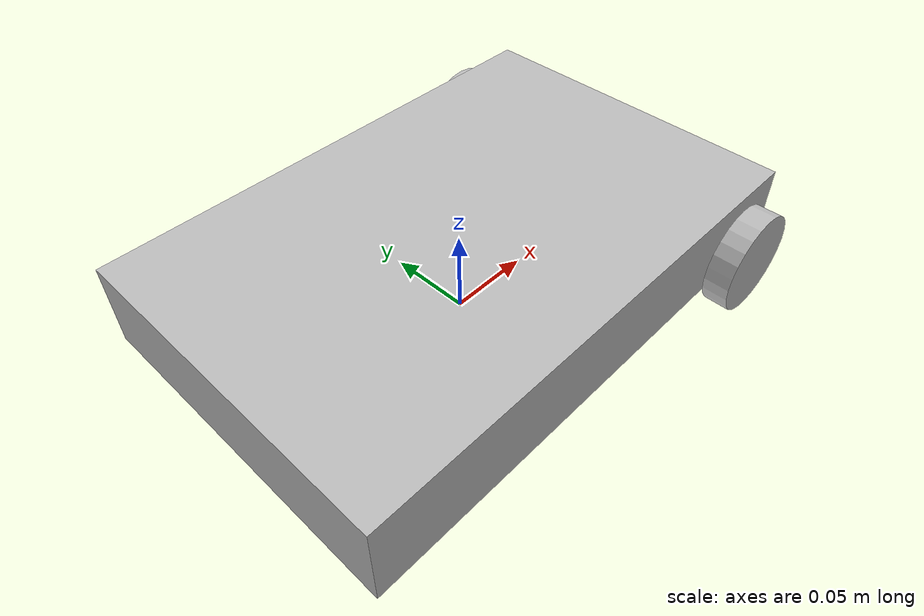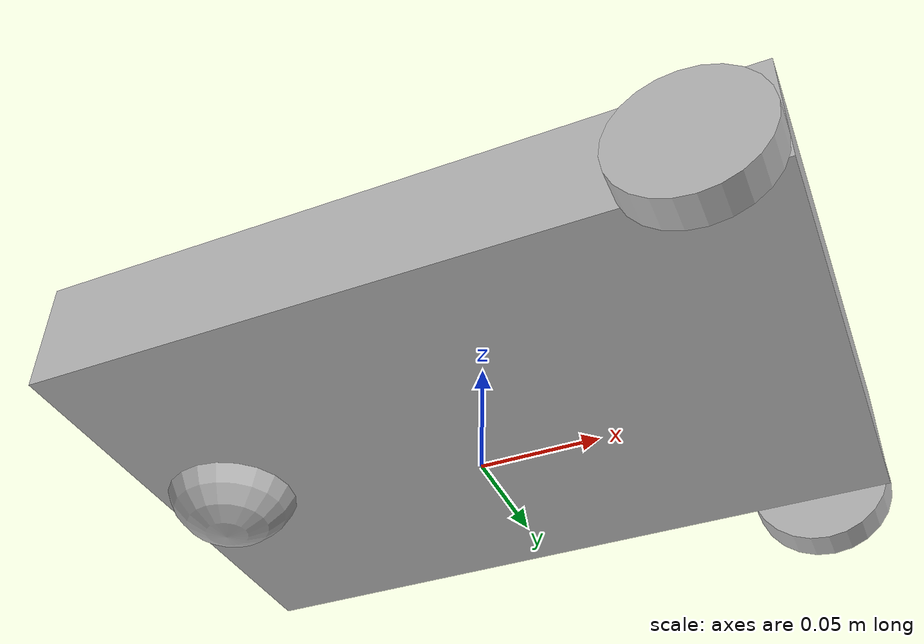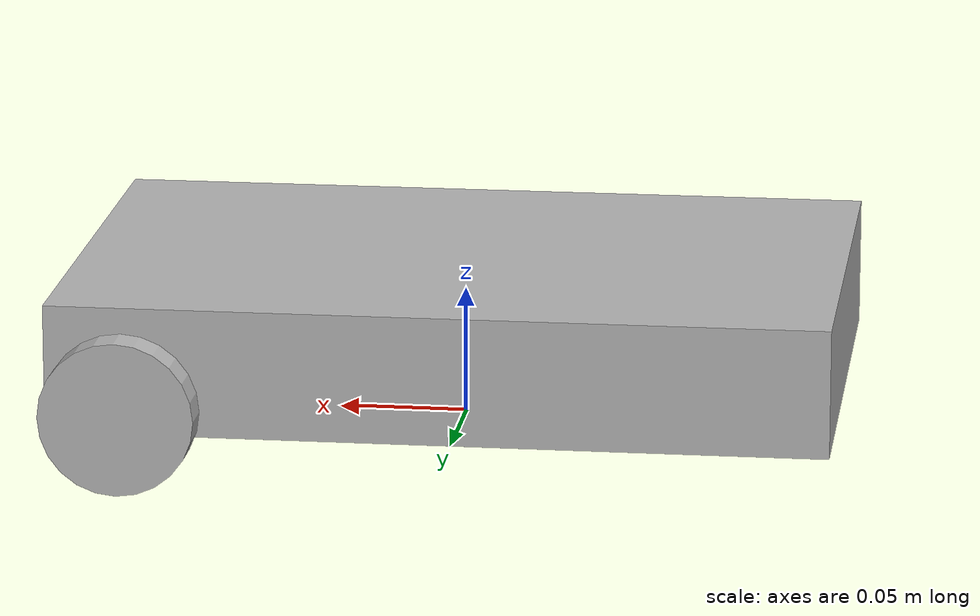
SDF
<sdf version='1.7'>
  <model name='caster_robot'>
    <link name='base_footprint'>
      <inertial>
        <pose>0 0 0.04 0 -0 0</pose>
        <mass>1</mass>
        <inertia>
          <ixx>0.00354167</ixx>
          <ixy>0</ixy>
          <ixz>0</ixz>
          <iyy>0.00770833</iyy>
          <iyz>0</iyz>
          <izz>0.0108333</izz>
        </inertia>
      </inertial>
      <collision name='base_footprint_fixed_joint_lump__base_link_collision'>
        <pose>0 0 0.04 0 -0 0</pose>
        <geometry>
          <box>
            <size>0.3 0.2 0.05</size>
          </box>
        </geometry>
      </collision>
      <visual name='base_footprint_fixed_joint_lump__base_visual_visual'>
        <pose>0 0 0.04 0 -0 0</pose>
        <geometry>
          <box>
            <size>0.3 0.2 0.05</size>
          </box>
        </geometry>
      </visual>
    </link>
    <joint name='base_to_caster_wheel' type='revolute'>
      <pose relative_to='base_footprint'>-0.12 0 0.025 0 -0 0</pose>
      <parent>base_footprint</parent>
      <child>caster_wheel</child>
      <axis>
        <xyz>0 1 0</xyz>
        <limit>
          <lower>-1e+16</lower>
          <upper>1e+16</upper>
        </limit>
        <dynamics>
          <spring_reference>0</spring_reference>
          <spring_stiffness>0</spring_stiffness>
        </dynamics>
      </axis>
    </joint>
    <link name='caster_wheel'>
      <pose relative_to='base_to_caster_wheel'>0 0 0 0 -0 0</pose>
      <inertial>
        <pose>0 0 0 0 -0 0</pose>
        <mass>0.5</mass>
        <inertia>
          <ixx>0.00018</ixx>
          <ixy>0</ixy>
          <ixz>0</ixz>
          <iyy>0.00018</iyy>
          <iyz>0</iyz>
          <izz>0.00018</izz>
        </inertia>
      </inertial>
      <collision name='caster_wheel_collision'>
        <pose>0 0 0 0 -0 0</pose>
        <geometry>
          <sphere>
            <radius>0.03</radius>
          </sphere>
        </geometry>
      </collision>
      <visual name='caster_wheel_visual_visual'>
        <pose>0 0 0 0 -0 0</pose>
        <geometry>
          <sphere>
            <radius>0.03</radius>
          </sphere>
        </geometry>
      </visual>
    </link>
    <joint name='base_to_left_wheel' type='revolute'>
      <pose relative_to='base_footprint'>0.12 -0.1077 0.025 1.5708 -0 0</pose>
      <parent>base_footprint</parent>
      <child>rear_left_wheel</child>
      <axis>
        <xyz>0 0 1</xyz>
        <limit>
          <lower>-1e+16</lower>
          <upper>1e+16</upper>
        </limit>
        <dynamics>
          <spring_reference>0</spring_reference>
          <spring_stiffness>0</spring_stiffness>
        </dynamics>
      </axis>
    </joint>
    <link name='rear_left_wheel'>
      <pose relative_to='base_to_left_wheel'>0 0 0 0 -0 0</pose>
      <inertial>
        <pose>0 0 0 0 -0 0</pose>
        <mass>0.5</mass>
        <inertia>
          <ixx>0.000121875</ixx>
          <ixy>0</ixy>
          <ixz>0</ixz>
          <iyy>0.000121875</iyy>
          <iyz>0</iyz>
          <izz>0.000225</izz>
        </inertia>
      </inertial>
      <collision name='rear_left_wheel_collision'>
        <pose>0 0 0 0 -0 0</pose>
        <geometry>
          <cylinder>
            <length>0.015</length>
            <radius>0.03</radius>
          </cylinder>
        </geometry>
      </collision>
      <visual name='rear_left_wheel_fixed_joint_lump__left_wheel_visual_visual'>
        <pose>0 0 0 0 -0 0</pose>
        <geometry>
          <cylinder>
            <length>0.015</length>
            <radius>0.03</radius>
          </cylinder>
        </geometry>
      </visual>
    </link>
    <joint name='base_to_right_wheel' type='revolute'>
      <pose relative_to='base_footprint'>0.12 0.1077 0.025 1.5708 -0 0</pose>
      <parent>base_footprint</parent>
      <child>rear_right_wheel</child>
      <axis>
        <xyz>0 0 1</xyz>
        <limit>
          <lower>-1e+16</lower>
          <upper>1e+16</upper>
        </limit>
        <dynamics>
          <spring_reference>0</spring_reference>
          <spring_stiffness>0</spring_stiffness>
        </dynamics>
      </axis>
    </joint>
    <link name='rear_right_wheel'>
      <pose relative_to='base_to_right_wheel'>0 0 0 0 -0 0</pose>
      <inertial>
        <pose>0 0 0 0 -0 0</pose>
        <mass>0.5</mass>
        <inertia>
          <ixx>0.000121875</ixx>
          <ixy>0</ixy>
          <ixz>0</ixz>
          <iyy>0.000121875</iyy>
          <iyz>0</iyz>
          <izz>0.000225</izz>
        </inertia>
      </inertial>
      <collision name='rear_right_wheel_collision'>
        <pose>0 0 0 0 -0 0</pose>
        <geometry>
          <cylinder>
            <length>0.015</length>
            <radius>0.03</radius>
          </cylinder>
        </geometry>
      </collision>
      <visual name='rear_right_wheel_fixed_joint_lump__right_wheel_visual_visual'>
        <pose>0 0 0 0 -0 0</pose>
        <geometry>
          <cylinder>
            <length>0.015</length>
            <radius>0.03</radius>
          </cylinder>
        </geometry>
      </visual>
    </link>
    <plugin name='differential_drive_controller' filename='libgazebo_ros_diff_drive.so'>
      <updateRate>50</updateRate>
      <leftJoint>base_to_left_wheel</leftJoint>
      <rightJoint>base_to_right_wheel</rightJoint>
      <wheelSeparation>0.2</wheelSeparation>
      <wheelDiameter>0.06</wheelDiameter>
      <wheelAcceleration>1.0</wheelAcceleration>
      <wheelTorque>20</wheelTorque>
      <commandTopic>cmd_vel</commandTopic>
      <odometryTopic>odom</odometryTopic>
      <odometryFrame>odom</odometryFrame>
      <robotBaseFrame>base_footprint</robotBaseFrame>
      <odometrySource>1</odometrySource>
      <publishWheelTF>1</publishWheelTF>
      <publishOdom>1</publishOdom>
      <publishWheelJointState>1</publishWheelJointState>
      <legacyMode>0</legacyMode>
      <rosDebugLevel>info</rosDebugLevel>
    </plugin>
    <frame name='base_joint' attached_to='base_footprint'>
      <pose>0 0 0.04 0 -0 0</pose>
    </frame>
    <frame name='base_link' attached_to='base_joint'/>
  </model>
</sdf>
